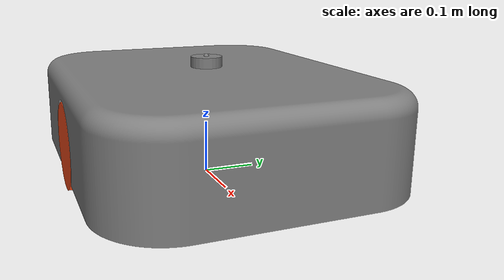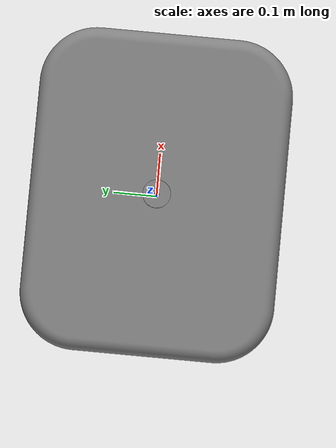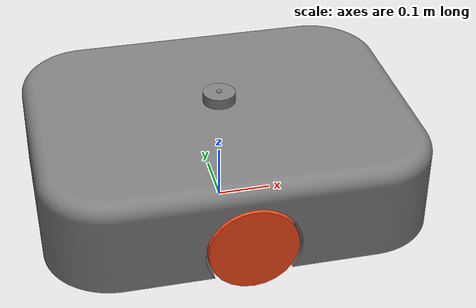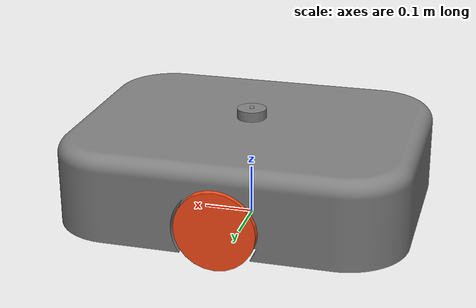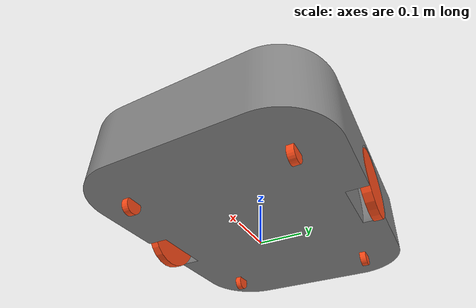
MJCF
<!-- This model will be attached as a child into worlds located in twr_sim/mujoco/worlds -->

<mujoco model="twr">
  <compiler angle="radian"/>

  <extension>
    <plugin plugin="mujoco.plugin.lidar">
      <instance name="lidar">
        <config key="resolution" value="360 1"/>
        <config key="azimuth_range" value="-3.14159 3.14159"/>
        <config key="elevation_range" value="0.0"/>
        <config key="min_range" value="0.1"/>
        <config key="max_range" value="5"/>
        <config key="update_rate" value="10.0"/>
        <config key="async" value="0"/>
      </instance>
    </plugin>
  </extension>

  <asset>
    <mesh name="twr_base" file="../mesh/twr_base.obj" scale="0.001 0.001 0.001"/>
  </asset>

  <worldbody>
    <body name="chassis" pos="0 0 0.03">
      <joint type="free"/>
      <geom type="mesh" mesh="twr_base"/>
      <inertial pos="0 0 0.0875" euler="0 0 0" mass="1" diaginertia="3.3333333333333335e-07 3.3333333333333335e-07 3.3333333333333335e-07"/>

      <!-- Drive wheels -->
      <body name="left_wheel_link" pos="0 0.265 0.05" quat="0.707107 -0.707107 0 0">
        <joint name="left_wheel_joint" type="hinge" pos="0 0 0" axis="0 0 1" damping="0.1" frictionloss="0.1"/>
        <inertial pos="0 0 0" quat="0 0 0 1" mass="0.2" diaginertia="0.0003266666666666667 0.0003266666666666667 0.00064"/>
        <geom type="cylinder" size="0.08 0.01" rgba="1 0.3 0.1 1"/>
      </body>
      <body name="right_wheel_link" pos="0 -0.265 0.05" quat="0.707107 -0.707107 0 0">
        <joint name="right_wheel_joint" type="hinge" pos="0 0 0" axis="0 0 1" damping="0.1" frictionloss="0.1"/>
        <inertial pos="0 0 0" quat="0 0 0 1" mass="0.2" diaginertia="0.0003266666666666667 0.0003266666666666667 0.00064"/>
        <geom type="cylinder" size="0.08 0.01" rgba="1 0.3 0.1 1"/>
      </body>

      <!-- Caster wheels -->
      <geom name="caster_front_left_wheel" type="cylinder" size="0.02 0.0075"
        pos="0.233333 0.183333 -0.009" quat="0.707107 0.707107 0 0" rgba="1 0.3 0.1 1"/>
      <geom name="caster_front_right_wheel" type="cylinder" size="0.02 0.0075"
        pos="0.233333 -0.183333 -0.009" quat="0.707107 0.707107 0 0" rgba="1 0.3 0.1 1"/>
      <geom name="caster_back_left_wheel" type="cylinder" size="0.02 0.0075"
        pos="-0.233333 0.183333 -0.009" quat="0.707107 0.707107 0 0" rgba="1 0.3 0.1 1"/>
      <geom name="caster_back_right_wheel" type="cylinder" size="0.02 0.0075"
        pos="-0.233333 -0.183333 -0.009" quat="0.707107 0.707107 0 0" rgba="1 0.3 0.1 1"/>

      <!-- IMU -->
      <geom name="imu" size="0.005 0.005 0.005" pos="0 0 0.0875" type="box" rgba="0 0 0 1"/>

      <!-- LiDAR -->
      <body name="lidar" pos="0 0 0.19">
        <inertial mass="1.0" pos="0 0 0" diaginertia="2.5833333333333332e-05 2.5833333333333332e-05 4.4999999999999996e-05"></inertial>
        <geom type="cylinder" size="0.03 0.01" mass="0.1"/>
        <!--
          Set position of 'site' the same as the top of the lidar geom.
          Otherwise, the lidar beams will collide with the lidar body itself and not displayed correctly.
        -->
        <site name="lidar_link" pos="0 0 0.01"/>
      </body>

    </body>
  </worldbody>

  <actuator>
    <velocity name="left_wheel_motor" joint="left_wheel_joint" ctrlrange="-1 1"/>
    <velocity name="right_wheel_motor" joint="right_wheel_joint" ctrlrange="-1 1"/>
  </actuator>

  <sensor>
    <plugin name="lidar_plugin" instance="lidar" objtype="site" objname="lidar_link"/>
  </sensor>

</mujoco>
